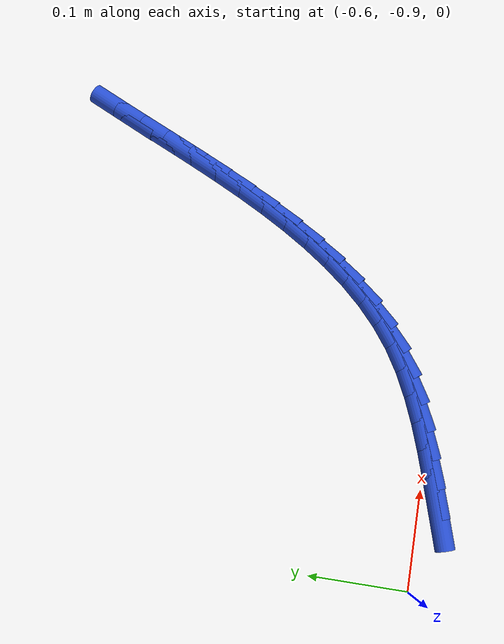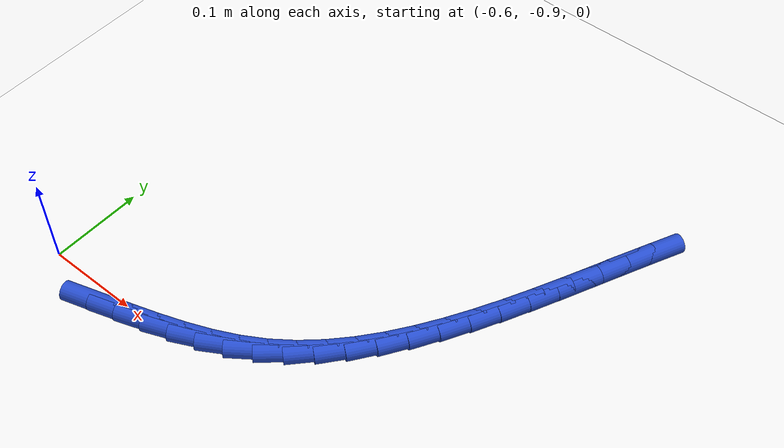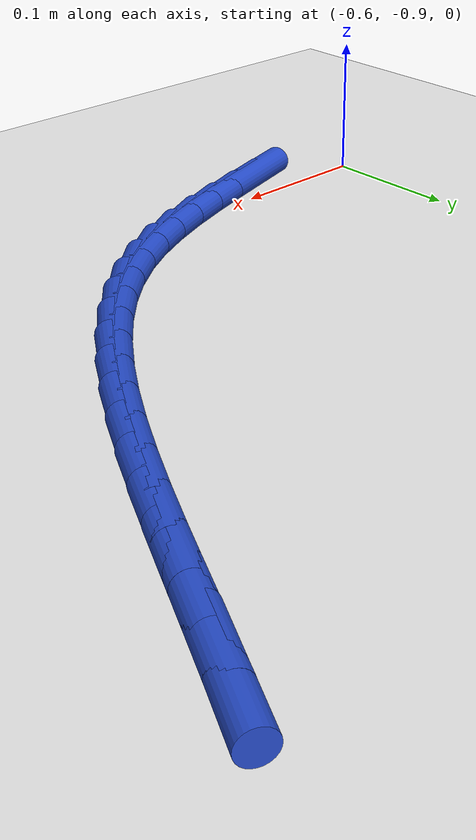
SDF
<sdf version="1.6">
 <world name="default">
  <model name="ground_plane">
   <static>1</static>
   <link name="link">
    <collision name="collision">
     <geometry><plane><normal>0 0 1</normal><size>100 100</size></plane></geometry>
     <surface><friction><ode><mu>100</mu><mu2>50</mu2></ode></friction></surface>
    </collision>
    <visual name="visual">
     <cast_shadows>0</cast_shadows>
     <geometry><plane><normal>0 0 1</normal><size>100 100</size></plane></geometry>
     <material>
      <script><uri>file://media/materials/scripts/gazebo.material</uri><name>Gazebo/WhiteGlow</name></script>
     </material>
    </visual>
   </link>
  </model>
  <model name="line">
   <link name="link_192">
    <pose>-0.5160194352857684 -0.9174075092766154 0.01 0 1.57 0.2962173520171208</pose>
    <collision name="collision">
     <geometry><cylinder><radius>0.01</radius><length>0.08</length></cylinder></geometry>
    </collision>
    <visual name="visual">
     <material>
      <script><name>Gazebo/Blue</name><uri>file://media/materials/scripts/gazebo.material</uri></script>
     </material>
     <geometry><cylinder><radius>0.01</radius><length>0.08</length></cylinder></geometry>
    </visual>
   </link>
   <link name="link_193">
    <pose>-0.4877065562939499 -0.9087665185980875 0.01 0 1.57 0.3099787362853767</pose>
    <collision name="collision">
     <geometry><cylinder><radius>0.01</radius><length>0.08</length></cylinder></geometry>
    </collision>
    <visual name="visual">
     <material>
      <script><name>Gazebo/Blue</name><uri>file://media/materials/scripts/gazebo.material</uri></script>
     </material>
     <geometry><cylinder><radius>0.01</radius><length>0.08</length></cylinder></geometry>
    </visual>
   </link>
   <link name="link_194">
    <pose>-0.46001780993114827 -0.899897700731203 0.01 0 1.57 0.34047580783592274</pose>
    <collision name="collision">
     <geometry><cylinder><radius>0.01</radius><length>0.08</length></cylinder></geometry>
    </collision>
    <visual name="visual">
     <material>
      <script><name>Gazebo/Blue</name><uri>file://media/materials/scripts/gazebo.material</uri></script>
     </material>
     <geometry><cylinder><radius>0.01</radius><length>0.08</length></cylinder></geometry>
    </visual>
   </link>
   <link name="link_195">
    <pose>-0.4331405881403015 -0.890375845179802 0.01 0 1.57 0.3887663246363279</pose>
    <collision name="collision">
     <geometry><cylinder><radius>0.01</radius><length>0.08</length></cylinder></geometry>
    </collision>
    <visual name="visual">
     <material>
      <script><name>Gazebo/Blue</name><uri>file://media/materials/scripts/gazebo.material</uri></script>
     </material>
     <geometry><cylinder><radius>0.01</radius><length>0.08</length></cylinder></geometry>
    </visual>
   </link>
   <link name="link_196">
    <pose>-0.4072622828643473 -0.8797757414477234 0.01 0 1.57 0.45576207928714485</pose>
    <collision name="collision">
     <geometry><cylinder><radius>0.01</radius><length>0.08</length></cylinder></geometry>
    </collision>
    <visual name="visual">
     <material>
      <script><name>Gazebo/Blue</name><uri>file://media/materials/scripts/gazebo.material</uri></script>
     </material>
     <geometry><cylinder><radius>0.01</radius><length>0.08</length></cylinder></geometry>
    </visual>
   </link>
   <link name="link_197">
    <pose>-0.38257028604622273 -0.867672179038807 0.01 0 1.57 0.5417193358692522</pose>
    <collision name="collision">
     <geometry><cylinder><radius>0.01</radius><length>0.08</length></cylinder></geometry>
    </collision>
    <visual name="visual">
     <material>
      <script><name>Gazebo/Blue</name><uri>file://media/materials/scripts/gazebo.material</uri></script>
     </material>
     <geometry><cylinder><radius>0.01</radius><length>0.08</length></cylinder></geometry>
    </visual>
   </link>
   <link name="link_198">
    <pose>-0.35925198962886656 -0.8536399474568926 0.01 0 1.57 0.6419751089366421</pose>
    <collision name="collision">
     <geometry><cylinder><radius>0.01</radius><length>0.08</length></cylinder></geometry>
    </collision>
    <visual name="visual">
     <material>
      <script><name>Gazebo/Blue</name><uri>file://media/materials/scripts/gazebo.material</uri></script>
     </material>
     <geometry><cylinder><radius>0.01</radius><length>0.08</length></cylinder></geometry>
    </visual>
   </link>
   <link name="link_199">
    <pose>-0.3374513889095449 -0.8373414183361029 0.01 0 1.57 0.7372481557020387</pose>
    <collision name="collision">
     <geometry><cylinder><radius>0.01</radius><length>0.08</length></cylinder></geometry>
    </collision>
    <visual name="visual">
     <material>
      <script><name>Gazebo/Blue</name><uri>file://media/materials/scripts/gazebo.material</uri></script>
     </material>
     <geometry><cylinder><radius>0.01</radius><length>0.08</length></cylinder></geometry>
    </visual>
   </link>
   <link name="link_200">
    <pose>-0.317102244154822 -0.818863254901861 0.01 0 1.57 0.8212406458963264</pose>
    <collision name="collision">
     <geometry><cylinder><radius>0.01</radius><length>0.08</length></cylinder></geometry>
    </collision>
    <visual name="visual">
     <material>
      <script><name>Gazebo/Blue</name><uri>file://media/materials/scripts/gazebo.material</uri></script>
     </material>
     <geometry><cylinder><radius>0.01</radius><length>0.08</length></cylinder></geometry>
    </visual>
   </link>
   <link name="link_201">
    <pose>-0.2980747391090182 -0.7984204290810581 0.01 0 1.57 0.8938145227975659</pose>
    <collision name="collision">
     <geometry><cylinder><radius>0.01</radius><length>0.08</length></cylinder></geometry>
    </collision>
    <visual name="visual">
     <material>
      <script><name>Gazebo/Blue</name><uri>file://media/materials/scripts/gazebo.material</uri></script>
     </material>
     <geometry><cylinder><radius>0.01</radius><length>0.08</length></cylinder></geometry>
    </visual>
   </link>
   <link name="link_202">
    <pose>-0.2802390438504525 -0.7762279403810038 0.01 0 1.57 0.955426619802921</pose>
    <collision name="collision">
     <geometry><cylinder><radius>0.01</radius><length>0.08</length></cylinder></geometry>
    </collision>
    <visual name="visual">
     <material>
      <script><name>Gazebo/Blue</name><uri>file://media/materials/scripts/gazebo.material</uri></script>
     </material>
     <geometry><cylinder><radius>0.01</radius><length>0.08</length></cylinder></geometry>
    </visual>
   </link>
   <link name="link_203">
    <pose>-0.2634653284574425 -0.7525007883090062 0.01 0 1.57 1.006837483079356</pose>
    <collision name="collision">
     <geometry><cylinder><radius>0.01</radius><length>0.08</length></cylinder></geometry>
    </collision>
    <visual name="visual">
     <material>
      <script><name>Gazebo/Blue</name><uri>file://media/materials/scripts/gazebo.material</uri></script>
     </material>
     <geometry><cylinder><radius>0.01</radius><length>0.08</length></cylinder></geometry>
    </visual>
   </link>
   <link name="link_204">
    <pose>-0.2476237630083064 -0.7274539723723739 0.01 0 1.57 1.048900428685275</pose>
    <collision name="collision">
     <geometry><cylinder><radius>0.01</radius><length>0.08</length></cylinder></geometry>
    </collision>
    <visual name="visual">
     <material>
      <script><name>Gazebo/Blue</name><uri>file://media/materials/scripts/gazebo.material</uri></script>
     </material>
     <geometry><cylinder><radius>0.01</radius><length>0.08</length></cylinder></geometry>
    </visual>
   </link>
   <link name="link_205">
    <pose>-0.23258451758136225 -0.7013024920784149 0.01 0 1.57 1.0824292966080822</pose>
    <collision name="collision">
     <geometry><cylinder><radius>0.01</radius><length>0.08</length></cylinder></geometry>
    </collision>
    <visual name="visual">
     <material>
      <script><name>Gazebo/Blue</name><uri>file://media/materials/scripts/gazebo.material</uri></script>
     </material>
     <geometry><cylinder><radius>0.01</radius><length>0.08</length></cylinder></geometry>
    </visual>
   </link>
   <link name="link_206">
    <pose>-0.218217762254928 -0.6742613469344378 0.01 0 1.57 1.1081251017487066</pose>
    <collision name="collision">
     <geometry><cylinder><radius>0.01</radius><length>0.08</length></cylinder></geometry>
    </collision>
    <visual name="visual">
     <material>
      <script><name>Gazebo/Blue</name><uri>file://media/materials/scripts/gazebo.material</uri></script>
     </material>
     <geometry><cylinder><radius>0.01</radius><length>0.08</length></cylinder></geometry>
    </visual>
   </link>
   <link name="link_207">
    <pose>-0.20439366710732243 -0.6465455364477527 0.01 0 1.57 1.1265399729183336</pose>
    <collision name="collision">
     <geometry><cylinder><radius>0.01</radius><length>0.08</length></cylinder></geometry>
    </collision>
    <visual name="visual">
     <material>
      <script><name>Gazebo/Blue</name><uri>file://media/materials/scripts/gazebo.material</uri></script>
     </material>
     <geometry><cylinder><radius>0.01</radius><length>0.08</length></cylinder></geometry>
    </visual>
   </link>
   <link name="link_208">
    <pose>-0.1909824022168632 -0.618370060125667 0.01 0 1.57 1.1380615252842405</pose>
    <collision name="collision">
     <geometry><cylinder><radius>0.01</radius><length>0.08</length></cylinder></geometry>
    </collision>
    <visual name="visual">
     <material>
      <script><name>Gazebo/Blue</name><uri>file://media/materials/scripts/gazebo.material</uri></script>
     </material>
     <geometry><cylinder><radius>0.01</radius><length>0.08</length></cylinder></geometry>
    </visual>
   </link>
   <link name="link_209">
    <pose>-0.17785413766186856 -0.5899499174754894 0.01 0 1.57 1.142906370896202</pose>
    <collision name="collision">
     <geometry><cylinder><radius>0.01</radius><length>0.08</length></cylinder></geometry>
    </collision>
    <visual name="visual">
     <material>
      <script><name>Gazebo/Blue</name><uri>file://media/materials/scripts/gazebo.material</uri></script>
     </material>
     <geometry><cylinder><radius>0.01</radius><length>0.08</length></cylinder></geometry>
    </visual>
   </link>
   <link name="link_210">
    <pose>-0.1648790435206563 -0.5615001080045279 0.01 0 1.57 1.1411158650482633</pose>
    <collision name="collision">
     <geometry><cylinder><radius>0.01</radius><length>0.08</length></cylinder></geometry>
    </collision>
    <visual name="visual">
     <material>
      <script><name>Gazebo/Blue</name><uri>file://media/materials/scripts/gazebo.material</uri></script>
     </material>
     <geometry><cylinder><radius>0.01</radius><length>0.08</length></cylinder></geometry>
    </visual>
   </link>
   <link name="link_211">
    <pose>-0.1519272898715453 -0.5332356312200928 0.01 0 1.57 1.1328312401274718</pose>
    <collision name="collision">
     <geometry><cylinder><radius>0.01</radius><length>0.08</length></cylinder></geometry>
    </collision>
    <visual name="visual">
     <material>
      <script><name>Gazebo/Blue</name><uri>file://media/materials/scripts/gazebo.material</uri></script>
     </material>
     <geometry><cylinder><radius>0.01</radius><length>0.08</length></cylinder></geometry>
    </visual>
   </link>
  </model>
 </world>
</sdf>
